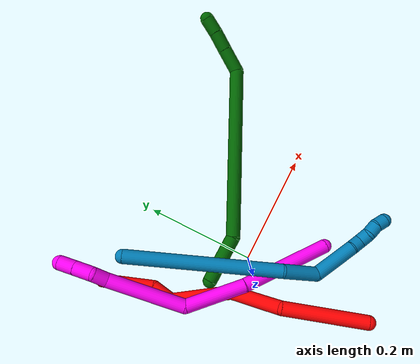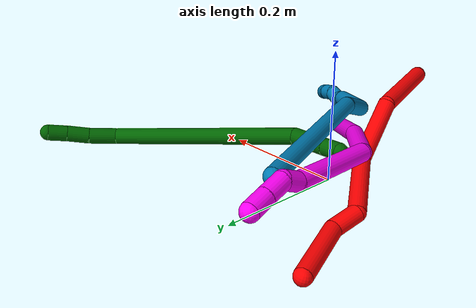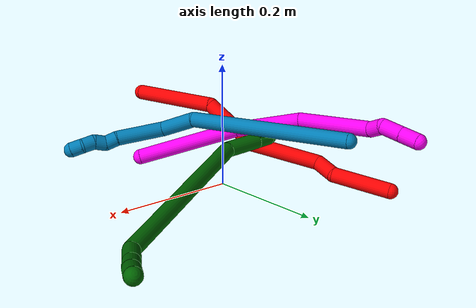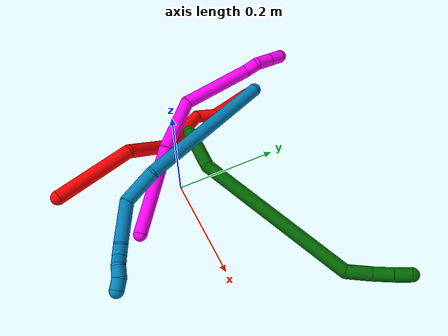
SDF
<sdf version="1.7">
 <world name="default">
  <model name="photoneo_s_sensor">
   <static>1</static>
   <pose>0 0 2 1.57079 1.57079 3.14159</pose>
   <link name="link">
    <inertial><mass>0.1</mass></inertial>
    <sensor name="sensor" type="depth">
     <update_rate>30</update_rate>
     <camera>
      <horizontal_fov>1.22</horizontal_fov>
      <image><width>1920</width><height>1200</height><format>B8G8R8</format></image>
      <clip><near>0.1</near><far>4</far></clip>
      <depth_camera><output>points</output></depth_camera>
     </camera>
     <plugin name="camera_plugin" filename="libgazebo_ros_depth_camera.so">
      <baseline>0.2</baseline>
      <alwaysOn>1</alwaysOn>
      <updateRate>0.0</updateRate>
      <cameraName>camera_ir</cameraName>
      <imageTopicName>/camera/color/image_raw</imageTopicName>
      <cameraInfoTopicName>/camera/color/camera_info</cameraInfoTopicName>
      <depthImageTopicName>/camera/depth/image_raw</depthImageTopicName>
      <depthImageCameraInfoTopicName>/camera/depth/camera_info</depthImageCameraInfoTopicName>
      <pointCloudTopicName>/camera/depth/points</pointCloudTopicName>
      <frameName>fr_optical</frameName>
      <pointCloudCutoff>0.1</pointCloudCutoff>
      <pointCloudCutoffMax>2.0</pointCloudCutoffMax>
      <distortionK1>0</distortionK1>
      <distortionK2>0</distortionK2>
      <distortionK3>0</distortionK3>
      <distortionT1>0</distortionT1>
      <distortionT2>0</distortionT2>
      <CxPrime>0</CxPrime>
      <Cx>0</Cx>
      <Cy>0</Cy>
      <focalLength>0</focalLength>
      <hackBaseline>0</hackBaseline>
     </plugin>
    </sensor>
   </link>
  </model>
  <model name="bin">
   <static>1</static>
   <link name="bottom">
    <collision name="collision-bottom">
     <pose>0 0 -0.01 0 -0 0</pose>
     <geometry><box><size>0.8 0.6 0.02</size></box></geometry>
     <surface>
      <friction><ode><mu>100</mu><mu2>100</mu2></ode></friction>
      <contact><collide_bitmask>65535</collide_bitmask></contact>
     </surface>
    </collision>
   </link>
   <link name="west_wall">
    <collision name="collision-west_wall">
     <pose>-0.41 0 0.1 0 -0 0</pose>
     <geometry><box><size>0.02 0.6 0.2</size></box></geometry>
     <surface>
      <friction><ode><mu>100</mu><mu2>100</mu2></ode></friction>
      <contact><collide_bitmask>65535</collide_bitmask></contact>
     </surface>
    </collision>
   </link>
   <link name="east_wall">
    <collision name="collision-east_wall">
     <pose>0.41 0 0.1 0 -0 0</pose>
     <geometry><box><size>0.02 0.6 0.2</size></box></geometry>
     <surface>
      <friction><ode><mu>100</mu><mu2>100</mu2></ode></friction>
      <contact><collide_bitmask>65535</collide_bitmask></contact>
     </surface>
    </collision>
   </link>
   <link name="south_wall">
    <collision name="collision-south_wall">
     <pose>0 -0.31 0.1 0 -0 0</pose>
     <geometry><box><size>0.8 0.02 0.2</size></box></geometry>
     <surface>
      <friction><ode><mu>100</mu><mu2>100</mu2></ode></friction>
      <contact><collide_bitmask>65535</collide_bitmask></contact>
     </surface>
    </collision>
   </link>
   <link name="north_wall">
    <collision name="collision-north_wall">
     <pose>0 0.31 0.1 0 -0 0</pose>
     <geometry><box><size>0.8 0.02 0.2</size></box></geometry>
     <surface>
      <friction><ode><mu>100</mu><mu2>100</mu2></ode></friction>
      <contact><collide_bitmask>65535</collide_bitmask></contact>
     </surface>
    </collision>
   </link>
  </model>
  <model name="2">
   <static>0</static>
   <link name="2">
    <collision name="collision-cylinder-e_1_1_4">
     <pose>-0.019781 0.070378 0.004434 -1.50787 -0.273477 0.256977</pose>
     <geometry><cylinder><radius>0.0125</radius><length>0.146479</length></cylinder></geometry>
     <surface>
      <friction><ode><mu>1.16</mu><mu2>1.16</mu2><slip1>0</slip1><slip2>0</slip2></ode></friction>
      <contact><ode><kp>1e+06</kp><kd>1</kd><max_vel>0</max_vel><min_depth>0.001</min_depth></ode></contact>
     </surface>
    </collision>
    <visual name="visual-cylinder-e_1_1_4">
     <pose>-0.019781 0.070378 0.004434 -1.50787 -0.273477 0.256977</pose>
     <geometry><cylinder><radius>0.0125</radius><length>0.146479</length></cylinder></geometry>
     <material><ambient>1 0 0 1</ambient></material>
    </visual>
    <collision name="collision-cylinder-e_2_4_5">
     <pose>-0.044773 0.181799 0.037349 -0.964153 -0.103941 0.054423</pose>
     <geometry><cylinder><radius>0.0125</radius><length>0.100455</length></cylinder></geometry>
     <surface>
      <friction><ode><mu>1.16</mu><mu2>1.16</mu2><slip1>0</slip1><slip2>0</slip2></ode></friction>
      <contact><ode><kp>1e+06</kp><kd>1</kd><max_vel>0</max_vel><min_depth>0.001</min_depth></ode></contact>
     </surface>
    </collision>
    <visual name="visual-cylinder-e_2_4_5">
     <pose>-0.044773 0.181799 0.037349 -0.964153 -0.103941 0.054423</pose>
     <geometry><cylinder><radius>0.0125</radius><length>0.100455</length></cylinder></geometry>
     <material><ambient>1 0 0 1</ambient></material>
    </visual>
    <collision name="collision-cylinder-e_3_5_6">
     <pose>-0.044521 0.278883 0.074934 -1.40976 0.095913 -0.081607</pose>
     <geometry><cylinder><radius>0.0125</radius><length>0.114077</length></cylinder></geometry>
     <surface>
      <friction><ode><mu>1.16</mu><mu2>1.16</mu2><slip1>0</slip1><slip2>0</slip2></ode></friction>
      <contact><ode><kp>1e+06</kp><kd>1</kd><max_vel>0</max_vel><min_depth>0.001</min_depth></ode></contact>
     </surface>
    </collision>
    <visual name="visual-cylinder-e_3_5_6">
     <pose>-0.044521 0.278883 0.074934 -1.40976 0.095913 -0.081607</pose>
     <geometry><cylinder><radius>0.0125</radius><length>0.114077</length></cylinder></geometry>
     <material><ambient>1 0 0 1</ambient></material>
    </visual>
    <collision name="collision-cylinder-e_4_6_7">
     <pose>-0.050407 0.350249 0.091607 -1.11198 -0.586084 0.370672</pose>
     <geometry><cylinder><radius>0.0125</radius><length>0.041032</length></cylinder></geometry>
     <surface>
      <friction><ode><mu>1.16</mu><mu2>1.16</mu2><slip1>0</slip1><slip2>0</slip2></ode></friction>
      <contact><ode><kp>1e+06</kp><kd>1</kd><max_vel>0</max_vel><min_depth>0.001</min_depth></ode></contact>
     </surface>
    </collision>
    <visual name="visual-cylinder-e_4_6_7">
     <pose>-0.050407 0.350249 0.091607 -1.11198 -0.586084 0.370672</pose>
     <geometry><cylinder><radius>0.0125</radius><length>0.041032</length></cylinder></geometry>
     <material><ambient>1 0 0 1</ambient></material>
    </visual>
    <collision name="collision-cylinder-e_5_7_2">
     <pose>-0.071185 0.413183 0.10576 -1.43339 -0.193764 0.168941</pose>
     <geometry><cylinder><radius>0.0125</radius><length>0.097957</length></cylinder></geometry>
     <surface>
      <friction><ode><mu>1.16</mu><mu2>1.16</mu2><slip1>0</slip1><slip2>0</slip2></ode></friction>
      <contact><ode><kp>1e+06</kp><kd>1</kd><max_vel>0</max_vel><min_depth>0.001</min_depth></ode></contact>
     </surface>
    </collision>
    <visual name="visual-cylinder-e_5_7_2">
     <pose>-0.071185 0.413183 0.10576 -1.43339 -0.193764 0.168941</pose>
     <geometry><cylinder><radius>0.0125</radius><length>0.097957</length></cylinder></geometry>
     <material><ambient>1 0 0 1</ambient></material>
    </visual>
    <collision name="collision-sphere-2">
     <pose>-0.080616 0.460792 0.112344 0 -0 0</pose>
     <geometry><sphere><radius>0.0125</radius></sphere></geometry>
     <surface>
      <friction><ode><mu>1.16</mu><mu2>1.16</mu2><slip1>0</slip1><slip2>0</slip2></ode></friction>
      <contact><ode><kp>1e+06</kp><kd>1</kd><max_vel>0</max_vel><min_depth>0.001</min_depth></ode></contact>
     </surface>
    </collision>
    <visual name="visual-sphere-2">
     <pose>-0.080616 0.460792 0.112344 0 -0 0</pose>
     <geometry><sphere><radius>0.0125</radius></sphere></geometry>
     <material><ambient>1 0 0 1</ambient></material>
    </visual>
    <collision name="collision-sphere-7">
     <pose>-0.061754 0.365574 0.099177 0 -0 0</pose>
     <geometry><sphere><radius>0.0125</radius></sphere></geometry>
     <surface>
      <friction><ode><mu>1.16</mu><mu2>1.16</mu2><slip1>0</slip1><slip2>0</slip2></ode></friction>
      <contact><ode><kp>1e+06</kp><kd>1</kd><max_vel>0</max_vel><min_depth>0.001</min_depth></ode></contact>
     </surface>
    </collision>
    <visual name="visual-sphere-7">
     <pose>-0.061754 0.365574 0.099177 0 -0 0</pose>
     <geometry><sphere><radius>0.0125</radius></sphere></geometry>
     <material><ambient>1 0 0 1</ambient></material>
    </visual>
    <collision name="collision-sphere-6">
     <pose>-0.039059 0.334925 0.084037 0 -0 0</pose>
     <geometry><sphere><radius>0.0125</radius></sphere></geometry>
     <surface>
      <friction><ode><mu>1.16</mu><mu2>1.16</mu2><slip1>0</slip1><slip2>0</slip2></ode></friction>
      <contact><ode><kp>1e+06</kp><kd>1</kd><max_vel>0</max_vel><min_depth>0.001</min_depth></ode></contact>
     </surface>
    </collision>
    <visual name="visual-sphere-6">
     <pose>-0.039059 0.334925 0.084037 0 -0 0</pose>
     <geometry><sphere><radius>0.0125</radius></sphere></geometry>
     <material><ambient>1 0 0 1</ambient></material>
    </visual>
    <collision name="collision-sphere-5">
     <pose>-0.049984 0.222842 0.06583 0 -0 0</pose>
     <geometry><sphere><radius>0.0125</radius></sphere></geometry>
     <surface>
      <friction><ode><mu>1.16</mu><mu2>1.16</mu2><slip1>0</slip1><slip2>0</slip2></ode></friction>
      <contact><ode><kp>1e+06</kp><kd>1</kd><max_vel>0</max_vel><min_depth>0.001</min_depth></ode></contact>
     </surface>
    </collision>
    <visual name="visual-sphere-5">
     <pose>-0.049984 0.222842 0.06583 0 -0 0</pose>
     <geometry><sphere><radius>0.0125</radius></sphere></geometry>
     <material><ambient>1 0 0 1</ambient></material>
    </visual>
    <collision name="collision-sphere-1">
     <geometry><sphere><radius>0.0125</radius></sphere></geometry>
     <surface>
      <friction><ode><mu>1.16</mu><mu2>1.16</mu2><slip1>0</slip1><slip2>0</slip2></ode></friction>
      <contact><ode><kp>1e+06</kp><kd>1</kd><max_vel>0</max_vel><min_depth>0.001</min_depth></ode></contact>
     </surface>
    </collision>
    <visual name="visual-sphere-1">
     <geometry><sphere><radius>0.0125</radius></sphere></geometry>
     <material><ambient>1 0 0 1</ambient></material>
    </visual>
    <collision name="collision-sphere-4">
     <pose>-0.039561 0.140757 0.008869 0 -0 0</pose>
     <geometry><sphere><radius>0.0125</radius></sphere></geometry>
     <surface>
      <friction><ode><mu>1.16</mu><mu2>1.16</mu2><slip1>0</slip1><slip2>0</slip2></ode></friction>
      <contact><ode><kp>1e+06</kp><kd>1</kd><max_vel>0</max_vel><min_depth>0.001</min_depth></ode></contact>
     </surface>
    </collision>
    <visual name="visual-sphere-4">
     <pose>-0.039561 0.140757 0.008869 0 -0 0</pose>
     <geometry><sphere><radius>0.0125</radius></sphere></geometry>
     <material><ambient>1 0 0 1</ambient></material>
    </visual>
    <inertial>
     <pose>-0.043031 0.230463 0.054137 0 -0 0</pose>
     <mass>0.5</mass>
     <inertia>
      <ixx>0.000619</ixx>
      <ixy>0</ixy>
      <ixz>0</ixz>
      <iyy>0.000237</iyy>
      <iyz>0</iyz>
      <izz>-0.000443</izz>
     </inertia>
    </inertial>
   </link>
   <pose>0.006303 -0.215754 0.116482 -3.10253 0.261485 -2.54393</pose>
  </model>
  <model name="6">
   <static>0</static>
   <link name="6">
    <collision name="collision-cylinder-e_1_1_4">
     <pose>0.006648 0.010618 -0.003247 -1.86757 0.539449 -0.715164</pose>
     <geometry><cylinder><radius>0.0125</radius><length>0.025883</length></cylinder></geometry>
     <surface>
      <friction><ode><mu>1.16</mu><mu2>1.16</mu2><slip1>0</slip1><slip2>0</slip2></ode></friction>
      <contact><ode><kp>1e+06</kp><kd>1</kd><max_vel>0</max_vel><min_depth>0.001</min_depth></ode></contact>
     </surface>
    </collision>
    <visual name="visual-cylinder-e_1_1_4">
     <pose>0.006648 0.010618 -0.003247 -1.86757 0.539449 -0.715164</pose>
     <geometry><cylinder><radius>0.0125</radius><length>0.025883</length></cylinder></geometry>
     <material><ambient>0 0.392157 0.003922 1</ambient></material>
    </visual>
    <collision name="collision-cylinder-e_2_4_5">
     <pose>0.028005 0.045944 -0.014046 -1.86741 0.517576 -0.687071</pose>
     <geometry><cylinder><radius>0.0125</radius><length>0.059459</length></cylinder></geometry>
     <surface>
      <friction><ode><mu>1.16</mu><mu2>1.16</mu2><slip1>0</slip1><slip2>0</slip2></ode></friction>
      <contact><ode><kp>1e+06</kp><kd>1</kd><max_vel>0</max_vel><min_depth>0.001</min_depth></ode></contact>
     </surface>
    </collision>
    <visual name="visual-cylinder-e_2_4_5">
     <pose>0.028005 0.045944 -0.014046 -1.86741 0.517576 -0.687071</pose>
     <geometry><cylinder><radius>0.0125</radius><length>0.059459</length></cylinder></geometry>
     <material><ambient>0 0.392157 0.003922 1</ambient></material>
    </visual>
    <collision name="collision-cylinder-e_3_5_6">
     <pose>0.156113 0.144428 -0.09261 -2.33711 0.836319 -1.61431</pose>
     <geometry><cylinder><radius>0.0125</radius><length>0.305584</length></cylinder></geometry>
     <surface>
      <friction><ode><mu>1.16</mu><mu2>1.16</mu2><slip1>0</slip1><slip2>0</slip2></ode></friction>
      <contact><ode><kp>1e+06</kp><kd>1</kd><max_vel>0</max_vel><min_depth>0.001</min_depth></ode></contact>
     </surface>
    </collision>
    <visual name="visual-cylinder-e_3_5_6">
     <pose>0.156113 0.144428 -0.09261 -2.33711 0.836319 -1.61431</pose>
     <geometry><cylinder><radius>0.0125</radius><length>0.305584</length></cylinder></geometry>
     <material><ambient>0 0.392157 0.003922 1</ambient></material>
    </visual>
    <collision name="collision-cylinder-e_4_6_7">
     <pose>0.282988 0.219039 -0.18151 -3.09502 0.645155 -3.00245</pose>
     <geometry><cylinder><radius>0.0125</radius><length>0.04482</length></cylinder></geometry>
     <surface>
      <friction><ode><mu>1.16</mu><mu2>1.16</mu2><slip1>0</slip1><slip2>0</slip2></ode></friction>
      <contact><ode><kp>1e+06</kp><kd>1</kd><max_vel>0</max_vel><min_depth>0.001</min_depth></ode></contact>
     </surface>
    </collision>
    <visual name="visual-cylinder-e_4_6_7">
     <pose>0.282988 0.219039 -0.18151 -3.09502 0.645155 -3.00245</pose>
     <geometry><cylinder><radius>0.0125</radius><length>0.04482</length></cylinder></geometry>
     <material><ambient>0 0.392157 0.003922 1</ambient></material>
    </visual>
    <collision name="collision-cylinder-e_5_7_8">
     <pose>0.305494 0.22082 -0.214086 -3.07725 0.550256 -2.91456</pose>
     <geometry><cylinder><radius>0.0125</radius><length>0.034539</length></cylinder></geometry>
     <surface>
      <friction><ode><mu>1.16</mu><mu2>1.16</mu2><slip1>0</slip1><slip2>0</slip2></ode></friction>
      <contact><ode><kp>1e+06</kp><kd>1</kd><max_vel>0</max_vel><min_depth>0.001</min_depth></ode></contact>
     </surface>
    </collision>
    <visual name="visual-cylinder-e_5_7_8">
     <pose>0.305494 0.22082 -0.214086 -3.07725 0.550256 -2.91456</pose>
     <geometry><cylinder><radius>0.0125</radius><length>0.034539</length></cylinder></geometry>
     <material><ambient>0 0.392157 0.003922 1</ambient></material>
    </visual>
    <collision name="collision-cylinder-e_6_8_2">
     <pose>0.322487 0.221483 -0.241317 3.11902 0.565608 3.06396</pose>
     <geometry><cylinder><radius>0.0125</radius><length>0.029715</length></cylinder></geometry>
     <surface>
      <friction><ode><mu>1.16</mu><mu2>1.16</mu2><slip1>0</slip1><slip2>0</slip2></ode></friction>
      <contact><ode><kp>1e+06</kp><kd>1</kd><max_vel>0</max_vel><min_depth>0.001</min_depth></ode></contact>
     </surface>
    </collision>
    <visual name="visual-cylinder-e_6_8_2">
     <pose>0.322487 0.221483 -0.241317 3.11902 0.565608 3.06396</pose>
     <geometry><cylinder><radius>0.0125</radius><length>0.029715</length></cylinder></geometry>
     <material><ambient>0 0.392157 0.003922 1</ambient></material>
    </visual>
    <collision name="collision-sphere-2">
     <pose>0.33045 0.2212 -0.253857 0 -0 0</pose>
     <geometry><sphere><radius>0.0125</radius></sphere></geometry>
     <surface>
      <friction><ode><mu>1.16</mu><mu2>1.16</mu2><slip1>0</slip1><slip2>0</slip2></ode></friction>
      <contact><ode><kp>1e+06</kp><kd>1</kd><max_vel>0</max_vel><min_depth>0.001</min_depth></ode></contact>
     </surface>
    </collision>
    <visual name="visual-sphere-2">
     <pose>0.33045 0.2212 -0.253857 0 -0 0</pose>
     <geometry><sphere><radius>0.0125</radius></sphere></geometry>
     <material><ambient>0 0.392157 0.003922 1</ambient></material>
    </visual>
    <collision name="collision-sphere-4">
     <pose>0.013295 0.021237 -0.006494 0 -0 0</pose>
     <geometry><sphere><radius>0.0125</radius></sphere></geometry>
     <surface>
      <friction><ode><mu>1.16</mu><mu2>1.16</mu2><slip1>0</slip1><slip2>0</slip2></ode></friction>
      <contact><ode><kp>1e+06</kp><kd>1</kd><max_vel>0</max_vel><min_depth>0.001</min_depth></ode></contact>
     </surface>
    </collision>
    <visual name="visual-sphere-4">
     <pose>0.013295 0.021237 -0.006494 0 -0 0</pose>
     <geometry><sphere><radius>0.0125</radius></sphere></geometry>
     <material><ambient>0 0.392157 0.003922 1</ambient></material>
    </visual>
    <collision name="collision-sphere-1">
     <geometry><sphere><radius>0.0125</radius></sphere></geometry>
     <surface>
      <friction><ode><mu>1.16</mu><mu2>1.16</mu2><slip1>0</slip1><slip2>0</slip2></ode></friction>
      <contact><ode><kp>1e+06</kp><kd>1</kd><max_vel>0</max_vel><min_depth>0.001</min_depth></ode></contact>
     </surface>
    </collision>
    <visual name="visual-sphere-1">
     <geometry><sphere><radius>0.0125</radius></sphere></geometry>
     <material><ambient>0 0.392157 0.003922 1</ambient></material>
    </visual>
    <collision name="collision-sphere-8">
     <pose>0.314524 0.221766 -0.228776 0 -0 0</pose>
     <geometry><sphere><radius>0.0125</radius></sphere></geometry>
     <surface>
      <friction><ode><mu>1.16</mu><mu2>1.16</mu2><slip1>0</slip1><slip2>0</slip2></ode></friction>
      <contact><ode><kp>1e+06</kp><kd>1</kd><max_vel>0</max_vel><min_depth>0.001</min_depth></ode></contact>
     </surface>
    </collision>
    <visual name="visual-sphere-8">
     <pose>0.314524 0.221766 -0.228776 0 -0 0</pose>
     <geometry><sphere><radius>0.0125</radius></sphere></geometry>
     <material><ambient>0 0.392157 0.003922 1</ambient></material>
    </visual>
    <collision name="collision-sphere-5">
     <pose>0.042714 0.070651 -0.021597 0 -0 0</pose>
     <geometry><sphere><radius>0.0125</radius></sphere></geometry>
     <surface>
      <friction><ode><mu>1.16</mu><mu2>1.16</mu2><slip1>0</slip1><slip2>0</slip2></ode></friction>
      <contact><ode><kp>1e+06</kp><kd>1</kd><max_vel>0</max_vel><min_depth>0.001</min_depth></ode></contact>
     </surface>
    </collision>
    <visual name="visual-sphere-5">
     <pose>0.042714 0.070651 -0.021597 0 -0 0</pose>
     <geometry><sphere><radius>0.0125</radius></sphere></geometry>
     <material><ambient>0 0.392157 0.003922 1</ambient></material>
    </visual>
    <collision name="collision-sphere-6">
     <pose>0.269512 0.218206 -0.163623 0 -0 0</pose>
     <geometry><sphere><radius>0.0125</radius></sphere></geometry>
     <surface>
      <friction><ode><mu>1.16</mu><mu2>1.16</mu2><slip1>0</slip1><slip2>0</slip2></ode></friction>
      <contact><ode><kp>1e+06</kp><kd>1</kd><max_vel>0</max_vel><min_depth>0.001</min_depth></ode></contact>
     </surface>
    </collision>
    <visual name="visual-sphere-6">
     <pose>0.269512 0.218206 -0.163623 0 -0 0</pose>
     <geometry><sphere><radius>0.0125</radius></sphere></geometry>
     <material><ambient>0 0.392157 0.003922 1</ambient></material>
    </visual>
    <collision name="collision-sphere-7">
     <pose>0.296464 0.219873 -0.199396 0 -0 0</pose>
     <geometry><sphere><radius>0.0125</radius></sphere></geometry>
     <surface>
      <friction><ode><mu>1.16</mu><mu2>1.16</mu2><slip1>0</slip1><slip2>0</slip2></ode></friction>
      <contact><ode><kp>1e+06</kp><kd>1</kd><max_vel>0</max_vel><min_depth>0.001</min_depth></ode></contact>
     </surface>
    </collision>
    <visual name="visual-sphere-7">
     <pose>0.296464 0.219873 -0.199396 0 -0 0</pose>
     <geometry><sphere><radius>0.0125</radius></sphere></geometry>
     <material><ambient>0 0.392157 0.003922 1</ambient></material>
    </visual>
    <inertial>
     <pose>0.164721 0.142335 -0.10384 0 -0 0</pose>
     <mass>0.5</mass>
     <inertia>
      <ixx>-0.001657</ixx>
      <ixy>0</ixy>
      <ixz>0</ixz>
      <iyy>-0.000229</iyy>
      <iyz>0</iyz>
      <izz>-0.002988</izz>
     </inertia>
    </inertial>
   </link>
   <pose>-0.056837 0.048814 0.080966 2.86563 0.834609 0.792201</pose>
  </model>
  <model name="9">
   <static>0</static>
   <link name="9">
    <collision name="collision-cylinder-e_1_1_4">
     <pose>0.079087 -0.09651 0.054895 1.05363 0.618935 0.367751</pose>
     <geometry><cylinder><radius>0.0125</radius><length>0.272634</length></cylinder></geometry>
     <surface>
      <friction><ode><mu>1.16</mu><mu2>1.16</mu2><slip1>0</slip1><slip2>0</slip2></ode></friction>
      <contact><ode><kp>1e+06</kp><kd>1</kd><max_vel>0</max_vel><min_depth>0.001</min_depth></ode></contact>
     </surface>
    </collision>
    <visual name="visual-cylinder-e_1_1_4">
     <pose>0.079087 -0.09651 0.054895 1.05363 0.618935 0.367751</pose>
     <geometry><cylinder><radius>0.0125</radius><length>0.272634</length></cylinder></geometry>
     <material><ambient>0 0.490196 0.709804 1</ambient></material>
    </visual>
    <collision name="collision-cylinder-e_2_4_5">
     <pose>0.168358 -0.2237 0.117774 1.31624 0.310847 0.241094</pose>
     <geometry><cylinder><radius>0.0125</radius><length>0.066596</length></cylinder></geometry>
     <surface>
      <friction><ode><mu>1.16</mu><mu2>1.16</mu2><slip1>0</slip1><slip2>0</slip2></ode></friction>
      <contact><ode><kp>1e+06</kp><kd>1</kd><max_vel>0</max_vel><min_depth>0.001</min_depth></ode></contact>
     </surface>
    </collision>
    <visual name="visual-cylinder-e_2_4_5">
     <pose>0.168358 -0.2237 0.117774 1.31624 0.310847 0.241094</pose>
     <geometry><cylinder><radius>0.0125</radius><length>0.066596</length></cylinder></geometry>
     <material><ambient>0 0.490196 0.709804 1</ambient></material>
    </visual>
    <collision name="collision-cylinder-e_3_5_6">
     <pose>0.208441 -0.278422 0.115364 1.97883 0.851379 1.20793</pose>
     <geometry><cylinder><radius>0.0125</radius><length>0.079495</length></cylinder></geometry>
     <surface>
      <friction><ode><mu>1.16</mu><mu2>1.16</mu2><slip1>0</slip1><slip2>0</slip2></ode></friction>
      <contact><ode><kp>1e+06</kp><kd>1</kd><max_vel>0</max_vel><min_depth>0.001</min_depth></ode></contact>
     </surface>
    </collision>
    <visual name="visual-cylinder-e_3_5_6">
     <pose>0.208441 -0.278422 0.115364 1.97883 0.851379 1.20793</pose>
     <geometry><cylinder><radius>0.0125</radius><length>0.079495</length></cylinder></geometry>
     <material><ambient>0 0.490196 0.709804 1</ambient></material>
    </visual>
    <collision name="collision-cylinder-e_4_6_7">
     <pose>0.244355 -0.310275 0.1015 1.98895 0.613327 0.906734</pose>
     <geometry><cylinder><radius>0.0125</radius><length>0.020908</length></cylinder></geometry>
     <surface>
      <friction><ode><mu>1.16</mu><mu2>1.16</mu2><slip1>0</slip1><slip2>0</slip2></ode></friction>
      <contact><ode><kp>1e+06</kp><kd>1</kd><max_vel>0</max_vel><min_depth>0.001</min_depth></ode></contact>
     </surface>
    </collision>
    <visual name="visual-cylinder-e_4_6_7">
     <pose>0.244355 -0.310275 0.1015 1.98895 0.613327 0.906734</pose>
     <geometry><cylinder><radius>0.0125</radius><length>0.020908</length></cylinder></geometry>
     <material><ambient>0 0.490196 0.709804 1</ambient></material>
    </visual>
    <collision name="collision-cylinder-e_5_7_8">
     <pose>0.259877 -0.320787 0.096119 2.18643 1.23593 1.88296</pose>
     <geometry><cylinder><radius>0.0125</radius><length>0.020126</length></cylinder></geometry>
     <surface>
      <friction><ode><mu>1.16</mu><mu2>1.16</mu2><slip1>0</slip1><slip2>0</slip2></ode></friction>
      <contact><ode><kp>1e+06</kp><kd>1</kd><max_vel>0</max_vel><min_depth>0.001</min_depth></ode></contact>
     </surface>
    </collision>
    <visual name="visual-cylinder-e_5_7_8">
     <pose>0.259877 -0.320787 0.096119 2.18643 1.23593 1.88296</pose>
     <geometry><cylinder><radius>0.0125</radius><length>0.020126</length></cylinder></geometry>
     <material><ambient>0 0.490196 0.709804 1</ambient></material>
    </visual>
    <collision name="collision-cylinder-e_6_8_9">
     <pose>0.276506 -0.328961 0.089585 2.27227 0.782588 1.453</pose>
     <geometry><cylinder><radius>0.0125</radius><length>0.02021</length></cylinder></geometry>
     <surface>
      <friction><ode><mu>1.16</mu><mu2>1.16</mu2><slip1>0</slip1><slip2>0</slip2></ode></friction>
      <contact><ode><kp>1e+06</kp><kd>1</kd><max_vel>0</max_vel><min_depth>0.001</min_depth></ode></contact>
     </surface>
    </collision>
    <visual name="visual-cylinder-e_6_8_9">
     <pose>0.276506 -0.328961 0.089585 2.27227 0.782588 1.453</pose>
     <geometry><cylinder><radius>0.0125</radius><length>0.02021</length></cylinder></geometry>
     <material><ambient>0 0.490196 0.709804 1</ambient></material>
    </visual>
    <collision name="collision-cylinder-e_7_9_2">
     <pose>0.289659 -0.342085 0.082628 1.86668 0.64581 0.848734</pose>
     <geometry><cylinder><radius>0.0125</radius><length>0.020031</length></cylinder></geometry>
     <surface>
      <friction><ode><mu>1.16</mu><mu2>1.16</mu2><slip1>0</slip1><slip2>0</slip2></ode></friction>
      <contact><ode><kp>1e+06</kp><kd>1</kd><max_vel>0</max_vel><min_depth>0.001</min_depth></ode></contact>
     </surface>
    </collision>
    <visual name="visual-cylinder-e_7_9_2">
     <pose>0.289659 -0.342085 0.082628 1.86668 0.64581 0.848734</pose>
     <geometry><cylinder><radius>0.0125</radius><length>0.020031</length></cylinder></geometry>
     <material><ambient>0 0.490196 0.709804 1</ambient></material>
    </visual>
    <collision name="collision-sphere-2">
     <pose>0.295687 -0.349736 0.080296 0 -0 0</pose>
     <geometry><sphere><radius>0.0125</radius></sphere></geometry>
     <surface>
      <friction><ode><mu>1.16</mu><mu2>1.16</mu2><slip1>0</slip1><slip2>0</slip2></ode></friction>
      <contact><ode><kp>1e+06</kp><kd>1</kd><max_vel>0</max_vel><min_depth>0.001</min_depth></ode></contact>
     </surface>
    </collision>
    <visual name="visual-sphere-2">
     <pose>0.295687 -0.349736 0.080296 0 -0 0</pose>
     <geometry><sphere><radius>0.0125</radius></sphere></geometry>
     <material><ambient>0 0.490196 0.709804 1</ambient></material>
    </visual>
    <collision name="collision-sphere-9">
     <pose>0.283632 -0.334434 0.08496 0 -0 0</pose>
     <geometry><sphere><radius>0.0125</radius></sphere></geometry>
     <surface>
      <friction><ode><mu>1.16</mu><mu2>1.16</mu2><slip1>0</slip1><slip2>0</slip2></ode></friction>
      <contact><ode><kp>1e+06</kp><kd>1</kd><max_vel>0</max_vel><min_depth>0.001</min_depth></ode></contact>
     </surface>
    </collision>
    <visual name="visual-sphere-9">
     <pose>0.283632 -0.334434 0.08496 0 -0 0</pose>
     <geometry><sphere><radius>0.0125</radius></sphere></geometry>
     <material><ambient>0 0.490196 0.709804 1</ambient></material>
    </visual>
    <collision name="collision-sphere-4">
     <pose>0.158174 -0.193019 0.10979 0 -0 0</pose>
     <geometry><sphere><radius>0.0125</radius></sphere></geometry>
     <surface>
      <friction><ode><mu>1.16</mu><mu2>1.16</mu2><slip1>0</slip1><slip2>0</slip2></ode></friction>
      <contact><ode><kp>1e+06</kp><kd>1</kd><max_vel>0</max_vel><min_depth>0.001</min_depth></ode></contact>
     </surface>
    </collision>
    <visual name="visual-sphere-4">
     <pose>0.158174 -0.193019 0.10979 0 -0 0</pose>
     <geometry><sphere><radius>0.0125</radius></sphere></geometry>
     <material><ambient>0 0.490196 0.709804 1</ambient></material>
    </visual>
    <collision name="collision-sphere-1">
     <geometry><sphere><radius>0.0125</radius></sphere></geometry>
     <surface>
      <friction><ode><mu>1.16</mu><mu2>1.16</mu2><slip1>0</slip1><slip2>0</slip2></ode></friction>
      <contact><ode><kp>1e+06</kp><kd>1</kd><max_vel>0</max_vel><min_depth>0.001</min_depth></ode></contact>
     </surface>
    </collision>
    <visual name="visual-sphere-1">
     <geometry><sphere><radius>0.0125</radius></sphere></geometry>
     <material><ambient>0 0.490196 0.709804 1</ambient></material>
    </visual>
    <collision name="collision-sphere-8">
     <pose>0.269381 -0.323487 0.094209 0 -0 0</pose>
     <geometry><sphere><radius>0.0125</radius></sphere></geometry>
     <surface>
      <friction><ode><mu>1.16</mu><mu2>1.16</mu2><slip1>0</slip1><slip2>0</slip2></ode></friction>
      <contact><ode><kp>1e+06</kp><kd>1</kd><max_vel>0</max_vel><min_depth>0.001</min_depth></ode></contact>
     </surface>
    </collision>
    <visual name="visual-sphere-8">
     <pose>0.269381 -0.323487 0.094209 0 -0 0</pose>
     <geometry><sphere><radius>0.0125</radius></sphere></geometry>
     <material><ambient>0 0.490196 0.709804 1</ambient></material>
    </visual>
    <collision name="collision-sphere-5">
     <pose>0.178543 -0.25438 0.125757 0 -0 0</pose>
     <geometry><sphere><radius>0.0125</radius></sphere></geometry>
     <surface>
      <friction><ode><mu>1.16</mu><mu2>1.16</mu2><slip1>0</slip1><slip2>0</slip2></ode></friction>
      <contact><ode><kp>1e+06</kp><kd>1</kd><max_vel>0</max_vel><min_depth>0.001</min_depth></ode></contact>
     </surface>
    </collision>
    <visual name="visual-sphere-5">
     <pose>0.178543 -0.25438 0.125757 0 -0 0</pose>
     <geometry><sphere><radius>0.0125</radius></sphere></geometry>
     <material><ambient>0 0.490196 0.709804 1</ambient></material>
    </visual>
    <collision name="collision-sphere-6">
     <pose>0.238338 -0.302463 0.104971 0 -0 0</pose>
     <geometry><sphere><radius>0.0125</radius></sphere></geometry>
     <surface>
      <friction><ode><mu>1.16</mu><mu2>1.16</mu2><slip1>0</slip1><slip2>0</slip2></ode></friction>
      <contact><ode><kp>1e+06</kp><kd>1</kd><max_vel>0</max_vel><min_depth>0.001</min_depth></ode></contact>
     </surface>
    </collision>
    <visual name="visual-sphere-6">
     <pose>0.238338 -0.302463 0.104971 0 -0 0</pose>
     <geometry><sphere><radius>0.0125</radius></sphere></geometry>
     <material><ambient>0 0.490196 0.709804 1</ambient></material>
    </visual>
    <collision name="collision-sphere-7">
     <pose>0.250373 -0.318087 0.098028 0 -0 0</pose>
     <geometry><sphere><radius>0.0125</radius></sphere></geometry>
     <surface>
      <friction><ode><mu>1.16</mu><mu2>1.16</mu2><slip1>0</slip1><slip2>0</slip2></ode></friction>
      <contact><ode><kp>1e+06</kp><kd>1</kd><max_vel>0</max_vel><min_depth>0.001</min_depth></ode></contact>
     </surface>
    </collision>
    <visual name="visual-sphere-7">
     <pose>0.250373 -0.318087 0.098028 0 -0 0</pose>
     <geometry><sphere><radius>0.0125</radius></sphere></geometry>
     <material><ambient>0 0.490196 0.709804 1</ambient></material>
    </visual>
    <inertial>
     <pose>0.142147 -0.179573 0.079005 0 -0 0</pose>
     <mass>0.5</mass>
     <inertia>
      <ixx>0.001887</ixx>
      <ixy>0</ixy>
      <ixz>0</ixz>
      <iyy>0.001634</iyy>
      <iyz>0</iyz>
      <izz>0.000233</izz>
     </inertia>
    </inertial>
   </link>
   <pose>-0.08235 0.200702 0.103787 0.991069 -0.561003 -0.386474</pose>
  </model>
  <model name="10">
   <static>0</static>
   <link name="10">
    <collision name="collision-cylinder-e_1_1_4">
     <pose>-0.015648 0.030326 0.075527 -0.381822 -0.18994 0.036815</pose>
     <geometry><cylinder><radius>0.0125</radius><length>0.165757</length></cylinder></geometry>
     <surface>
      <friction><ode><mu>1.16</mu><mu2>1.16</mu2><slip1>0</slip1><slip2>0</slip2></ode></friction>
      <contact><ode><kp>1e+06</kp><kd>1</kd><max_vel>0</max_vel><min_depth>0.001</min_depth></ode></contact>
     </surface>
    </collision>
    <visual name="visual-cylinder-e_1_1_4">
     <pose>-0.015648 0.030326 0.075527 -0.381822 -0.18994 0.036815</pose>
     <geometry><cylinder><radius>0.0125</radius><length>0.165757</length></cylinder></geometry>
     <material><ambient>1 0 0.964706 1</ambient></material>
    </visual>
    <collision name="collision-cylinder-e_2_4_5">
     <pose>-0.044296 0.086734 0.196317 -0.522767 -0.243913 0.06555</pose>
     <geometry><cylinder><radius>0.0125</radius><length>0.107665</length></cylinder></geometry>
     <surface>
      <friction><ode><mu>1.16</mu><mu2>1.16</mu2><slip1>0</slip1><slip2>0</slip2></ode></friction>
      <contact><ode><kp>1e+06</kp><kd>1</kd><max_vel>0</max_vel><min_depth>0.001</min_depth></ode></contact>
     </surface>
    </collision>
    <visual name="visual-cylinder-e_2_4_5">
     <pose>-0.044296 0.086734 0.196317 -0.522767 -0.243913 0.06555</pose>
     <geometry><cylinder><radius>0.0125</radius><length>0.107665</length></cylinder></geometry>
     <material><ambient>1 0 0.964706 1</ambient></material>
    </visual>
    <collision name="collision-cylinder-e_3_5_6">
     <pose>-0.054815 0.174816 0.272256 -1.11132 0.03585 -0.022261</pose>
     <geometry><cylinder><radius>0.0125</radius><length>0.138436</length></cylinder></geometry>
     <surface>
      <friction><ode><mu>1.16</mu><mu2>1.16</mu2><slip1>0</slip1><slip2>0</slip2></ode></friction>
      <contact><ode><kp>1e+06</kp><kd>1</kd><max_vel>0</max_vel><min_depth>0.001</min_depth></ode></contact>
     </surface>
    </collision>
    <visual name="visual-cylinder-e_3_5_6">
     <pose>-0.054815 0.174816 0.272256 -1.11132 0.03585 -0.022261</pose>
     <geometry><cylinder><radius>0.0125</radius><length>0.138436</length></cylinder></geometry>
     <material><ambient>1 0 0.964706 1</ambient></material>
    </visual>
    <collision name="collision-cylinder-e_4_6_7">
     <pose>-0.047564 0.247129 0.309199 -1.02489 0.376422 -0.213488</pose>
     <geometry><cylinder><radius>0.0125</radius><length>0.025954</length></cylinder></geometry>
     <surface>
      <friction><ode><mu>1.16</mu><mu2>1.16</mu2><slip1>0</slip1><slip2>0</slip2></ode></friction>
      <contact><ode><kp>1e+06</kp><kd>1</kd><max_vel>0</max_vel><min_depth>0.001</min_depth></ode></contact>
     </surface>
    </collision>
    <visual name="visual-cylinder-e_4_6_7">
     <pose>-0.047564 0.247129 0.309199 -1.02489 0.376422 -0.213488</pose>
     <geometry><cylinder><radius>0.0125</radius><length>0.025954</length></cylinder></geometry>
     <material><ambient>1 0 0.964706 1</ambient></material>
    </visual>
    <collision name="collision-cylinder-e_5_7_8">
     <pose>-0.046585 0.272681 0.32062 -1.24454 -0.231477 0.166408</pose>
     <geometry><cylinder><radius>0.0125</radius><length>0.033052</length></cylinder></geometry>
     <surface>
      <friction><ode><mu>1.16</mu><mu2>1.16</mu2><slip1>0</slip1><slip2>0</slip2></ode></friction>
      <contact><ode><kp>1e+06</kp><kd>1</kd><max_vel>0</max_vel><min_depth>0.001</min_depth></ode></contact>
     </surface>
    </collision>
    <visual name="visual-cylinder-e_5_7_8">
     <pose>-0.046585 0.272681 0.32062 -1.24454 -0.231477 0.166408</pose>
     <geometry><cylinder><radius>0.0125</radius><length>0.033052</length></cylinder></geometry>
     <material><ambient>1 0 0.964706 1</ambient></material>
    </visual>
    <collision name="collision-cylinder-e_6_8_2">
     <pose>-0.053725 0.301327 0.330377 -1.24028 -0.231925 0.165986</pose>
     <geometry><cylinder><radius>0.0125</radius><length>0.029135</length></cylinder></geometry>
     <surface>
      <friction><ode><mu>1.16</mu><mu2>1.16</mu2><slip1>0</slip1><slip2>0</slip2></ode></friction>
      <contact><ode><kp>1e+06</kp><kd>1</kd><max_vel>0</max_vel><min_depth>0.001</min_depth></ode></contact>
     </surface>
    </collision>
    <visual name="visual-cylinder-e_6_8_2">
     <pose>-0.053725 0.301327 0.330377 -1.24028 -0.231925 0.165986</pose>
     <geometry><cylinder><radius>0.0125</radius><length>0.029135</length></cylinder></geometry>
     <material><ambient>1 0 0.964706 1</ambient></material>
    </visual>
    <collision name="collision-sphere-2">
     <pose>-0.057073 0.314737 0.334978 0 -0 0</pose>
     <geometry><sphere><radius>0.0125</radius></sphere></geometry>
     <surface>
      <friction><ode><mu>1.16</mu><mu2>1.16</mu2><slip1>0</slip1><slip2>0</slip2></ode></friction>
      <contact><ode><kp>1e+06</kp><kd>1</kd><max_vel>0</max_vel><min_depth>0.001</min_depth></ode></contact>
     </surface>
    </collision>
    <visual name="visual-sphere-2">
     <pose>-0.057073 0.314737 0.334978 0 -0 0</pose>
     <geometry><sphere><radius>0.0125</radius></sphere></geometry>
     <material><ambient>1 0 0.964706 1</ambient></material>
    </visual>
    <collision name="collision-sphere-4">
     <pose>-0.031295 0.060652 0.151054 0 -0 0</pose>
     <geometry><sphere><radius>0.0125</radius></sphere></geometry>
     <surface>
      <friction><ode><mu>1.16</mu><mu2>1.16</mu2><slip1>0</slip1><slip2>0</slip2></ode></friction>
      <contact><ode><kp>1e+06</kp><kd>1</kd><max_vel>0</max_vel><min_depth>0.001</min_depth></ode></contact>
     </surface>
    </collision>
    <visual name="visual-sphere-4">
     <pose>-0.031295 0.060652 0.151054 0 -0 0</pose>
     <geometry><sphere><radius>0.0125</radius></sphere></geometry>
     <material><ambient>1 0 0.964706 1</ambient></material>
    </visual>
    <collision name="collision-sphere-1">
     <geometry><sphere><radius>0.0125</radius></sphere></geometry>
     <surface>
      <friction><ode><mu>1.16</mu><mu2>1.16</mu2><slip1>0</slip1><slip2>0</slip2></ode></friction>
      <contact><ode><kp>1e+06</kp><kd>1</kd><max_vel>0</max_vel><min_depth>0.001</min_depth></ode></contact>
     </surface>
    </collision>
    <visual name="visual-sphere-1">
     <geometry><sphere><radius>0.0125</radius></sphere></geometry>
     <material><ambient>1 0 0.964706 1</ambient></material>
    </visual>
    <collision name="collision-sphere-8">
     <pose>-0.050376 0.287917 0.325776 0 -0 0</pose>
     <geometry><sphere><radius>0.0125</radius></sphere></geometry>
     <surface>
      <friction><ode><mu>1.16</mu><mu2>1.16</mu2><slip1>0</slip1><slip2>0</slip2></ode></friction>
      <contact><ode><kp>1e+06</kp><kd>1</kd><max_vel>0</max_vel><min_depth>0.001</min_depth></ode></contact>
     </surface>
    </collision>
    <visual name="visual-sphere-8">
     <pose>-0.050376 0.287917 0.325776 0 -0 0</pose>
     <geometry><sphere><radius>0.0125</radius></sphere></geometry>
     <material><ambient>1 0 0.964706 1</ambient></material>
    </visual>
    <collision name="collision-sphere-5">
     <pose>-0.057296 0.112816 0.241579 0 -0 0</pose>
     <geometry><sphere><radius>0.0125</radius></sphere></geometry>
     <surface>
      <friction><ode><mu>1.16</mu><mu2>1.16</mu2><slip1>0</slip1><slip2>0</slip2></ode></friction>
      <contact><ode><kp>1e+06</kp><kd>1</kd><max_vel>0</max_vel><min_depth>0.001</min_depth></ode></contact>
     </surface>
    </collision>
    <visual name="visual-sphere-5">
     <pose>-0.057296 0.112816 0.241579 0 -0 0</pose>
     <geometry><sphere><radius>0.0125</radius></sphere></geometry>
     <material><ambient>1 0 0.964706 1</ambient></material>
    </visual>
    <collision name="collision-sphere-6">
     <pose>-0.052335 0.236815 0.302933 0 -0 0</pose>
     <geometry><sphere><radius>0.0125</radius></sphere></geometry>
     <surface>
      <friction><ode><mu>1.16</mu><mu2>1.16</mu2><slip1>0</slip1><slip2>0</slip2></ode></friction>
      <contact><ode><kp>1e+06</kp><kd>1</kd><max_vel>0</max_vel><min_depth>0.001</min_depth></ode></contact>
     </surface>
    </collision>
    <visual name="visual-sphere-6">
     <pose>-0.052335 0.236815 0.302933 0 -0 0</pose>
     <geometry><sphere><radius>0.0125</radius></sphere></geometry>
     <material><ambient>1 0 0.964706 1</ambient></material>
    </visual>
    <collision name="collision-sphere-7">
     <pose>-0.042794 0.257444 0.315465 0 -0 0</pose>
     <geometry><sphere><radius>0.0125</radius></sphere></geometry>
     <surface>
      <friction><ode><mu>1.16</mu><mu2>1.16</mu2><slip1>0</slip1><slip2>0</slip2></ode></friction>
      <contact><ode><kp>1e+06</kp><kd>1</kd><max_vel>0</max_vel><min_depth>0.001</min_depth></ode></contact>
     </surface>
    </collision>
    <visual name="visual-sphere-7">
     <pose>-0.042794 0.257444 0.315465 0 -0 0</pose>
     <geometry><sphere><radius>0.0125</radius></sphere></geometry>
     <material><ambient>1 0 0.964706 1</ambient></material>
    </visual>
    <inertial>
     <pose>-0.038581 0.125543 0.199187 0 -0 0</pose>
     <mass>0.5</mass>
     <inertia>
      <ixx>0.000731</ixx>
      <ixy>0</ixy>
      <ixz>0</ixz>
      <iyy>0.000599</iyy>
      <iyz>0</iyz>
      <izz>-0.000288</izz>
     </inertia>
    </inertial>
   </link>
   <pose>0.085428 -0.110821 0.037889 -0.371651 -0.92149 0.075104</pose>
  </model>
 </world>
</sdf>
